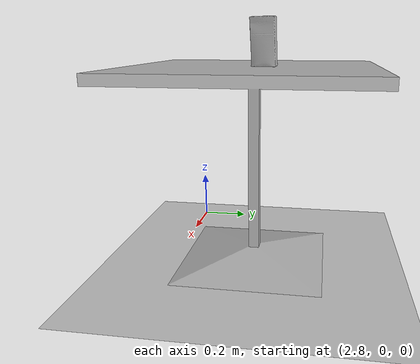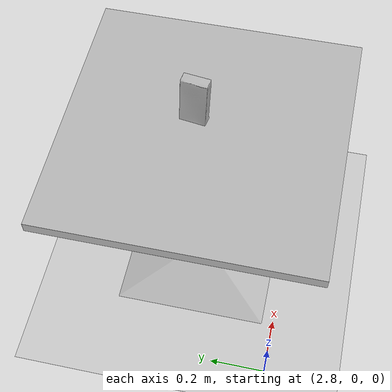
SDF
<sdf version="1.6">
 <world name="default">
  <model name="ground_plane">
   <static>1</static>
   <link name="link">
    <collision name="collision">
     <geometry><plane><normal>0 0 1</normal><size>100 100</size></plane></geometry>
     <surface><friction><ode><mu>100</mu><mu2>50</mu2></ode></friction></surface>
    </collision>
    <visual name="visual">
     <cast_shadows>0</cast_shadows>
     <geometry><plane><normal>0 0 1</normal><size>100 100</size></plane></geometry>
     <material>
      <script><uri>file://media/materials/scripts/gazebo.material</uri><name>Gazebo/Grey</name></script>
     </material>
    </visual>
   </link>
  </model>
  <light name="sun" type="directional">
   <pose>0 0 10 0 -0 0</pose>
   <diffuse>0.8 0.8 0.8 1</diffuse>
   <specular>0.1 0.1 0.1 1</specular>
   <attenuation>
    <range>1000</range>
    <constant>0.9</constant>
    <linear>0.01</linear>
    <quadratic>0.001</quadratic>
   </attenuation>
   <direction>-0.5 0.5 -1</direction>
  </light>
  <plugin name="ros_interface_plugin" filename="librotors_gazebo_ros_interface_plugin.so"/>
  <spherical_coordinates>
   <surface_model>EARTH_WGS84</surface_model>
   <latitude_deg>47.3667</latitude_deg>
   <longitude_deg>8.55</longitude_deg>
   <elevation>500</elevation>
   <heading_deg>0</heading_deg>
  </spherical_coordinates>
  <physics name="default_physics" default="0" type="ode">
   <ode>
    <solver>
     <type>quick</type>
     <iters>1000</iters>
     <sor>1.3</sor>
     <use_dynamic_moi_rescaling>0</use_dynamic_moi_rescaling>
    </solver>
    <constraints>
     <cfm>0</cfm>
     <erp>0.2</erp>
     <contact_max_correcting_vel>100</contact_max_correcting_vel>
     <contact_surface_layer>0.001</contact_surface_layer>
    </constraints>
   </ode>
   <max_step_size>0.01</max_step_size>
   <real_time_factor>1</real_time_factor>
   <real_time_update_rate>100</real_time_update_rate>
  </physics>
  <gravity>0 0 -9.8</gravity>
  <magnetic_field>6e-06 2.3e-05 -4.2e-05</magnetic_field>
  <atmosphere type="adiabatic"/>
  <scene><ambient>0.4 0.4 0.4 1</ambient><background>0.7 0.7 0.7 1</background><shadows>1</shadows></scene>
  <model name="robot">
   <link name="sugar">
    <inertial>
     <pose>-1 0 0 0 -0 0</pose>
     <mass>0.0020</mass>
     <inertia><ixx>0.0017</ixx><ixy>0</ixy><ixz>0</ixz><iyy>0.0017</iyy><iyz>0</iyz><izz>0.0017</izz></inertia>
    </inertial>
    <collision name="sugar_collision">
     <pose>-1 0 0 -1.57 0 0</pose>
     <geometry>
      <mesh>
       <scale>1 1 1</scale>
       <uri>/home/skywoodsz/uav/rotors_arm_ws/src/fly/ycb_model/cfg/sugar/texture_map.dae</uri>
      </mesh>
     </geometry>
     <surface>
      <friction><ode><mu>1000000.0</mu><mu2>1000000.0</mu2></ode></friction>
      <contact>
       <ode><kp>10000000.0</kp><kd>1.0</kd><min_depth>0.001</min_depth><max_vel>0.1</max_vel></ode>
      </contact>
     </surface>
    </collision>
    <visual name="sugar_visual">
     <pose>-1 0 0 -1.57 0 0</pose>
     <geometry>
      <mesh>
       <scale>1 1 1</scale>
       <uri>/home/skywoodsz/uav/rotors_arm_ws/src/fly/ycb_model/cfg/sugar/texture_map.dae</uri>
      </mesh>
     </geometry>
    </visual>
   </link>
   <pose>2.30872 0.436931 0.892189 -0.008054 -0.025593 3.06313</pose>
  </model>
  <model name="cafe_table">
   <static>1</static>
   <link name="link">
    <collision name="surface">
     <pose>0 0 0.755 0 -0 0</pose>
     <geometry><box><size>0.913 0.913 0.04</size></box></geometry>
    </collision>
    <collision name="column">
     <pose>0 0 0.37 0 -0 0</pose>
     <geometry><box><size>0.042 0.042 0.74</size></box></geometry>
    </collision>
    <collision name="base">
     <pose>0 0 0.02 0 -0 0</pose>
     <geometry><box><size>0.56 0.56 0.04</size></box></geometry>
    </collision>
    <visual name="visual">
     <geometry><mesh><uri>model://cafe_table/meshes/cafe_table.dae</uri><scale>1 1 1</scale></mesh></geometry>
    </visual>
   </link>
   <pose>3.26334 0.320204 0 0 -0 0</pose>
  </model>
 </world>
</sdf>
